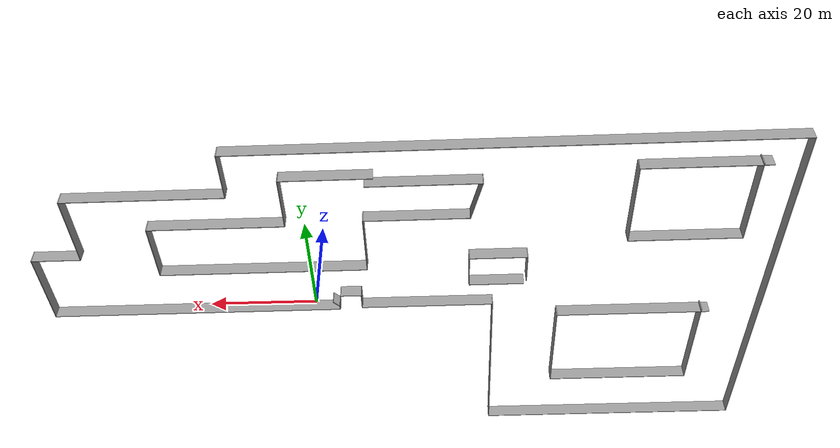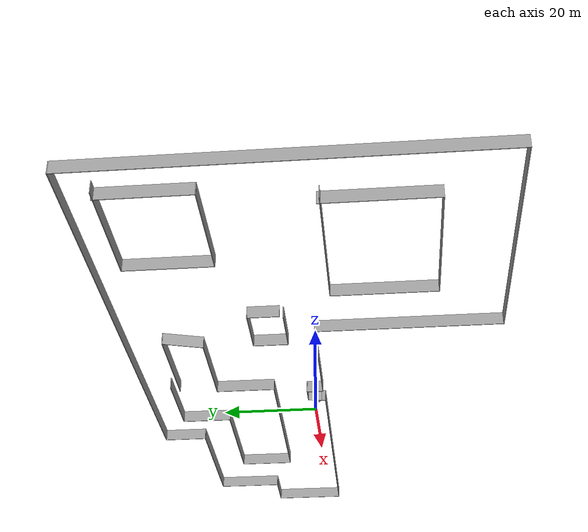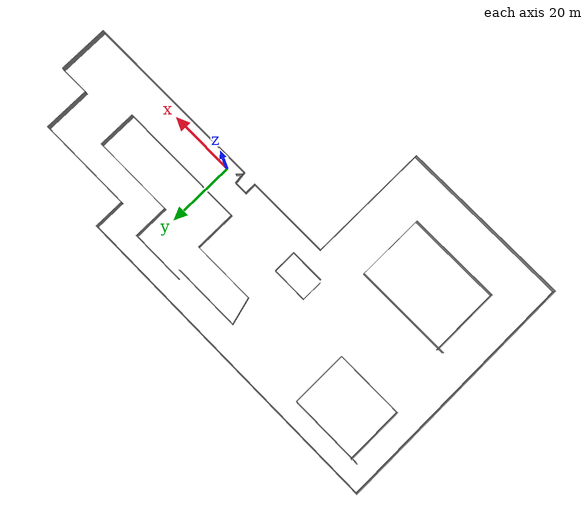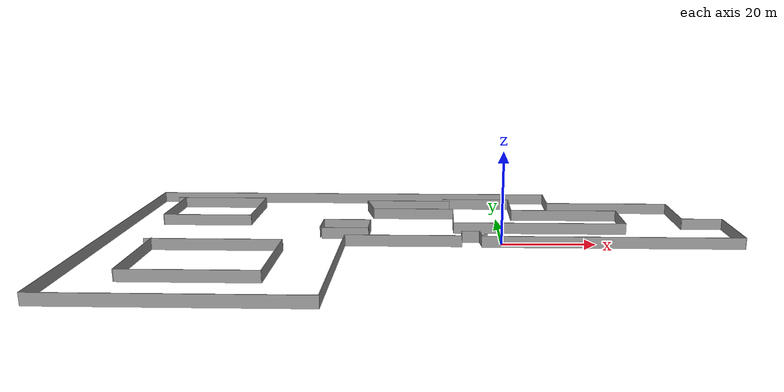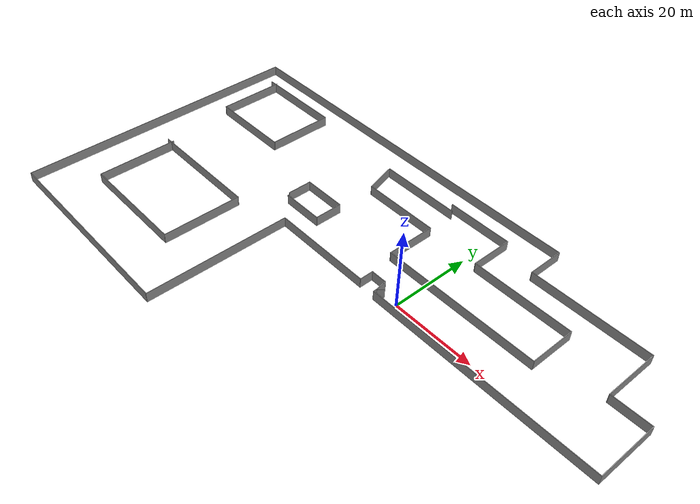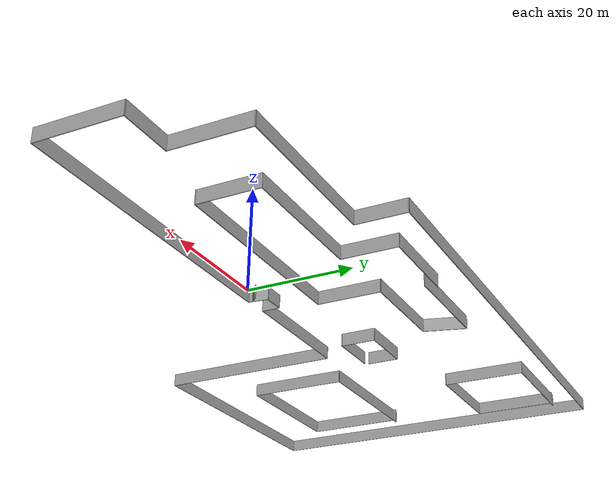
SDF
<?xml version='1.0'?>
<sdf version='1.7'>
  <model name='wall.world'>
    <pose>-16.84 -1.275 0 0 -0 0</pose>
    <link name='Wall_0'>
      <collision name='Wall_0_Collision'>
        <geometry>
          <box>
            <size>1 0.15 2.5</size>
          </box>
        </geometry>
        <pose>0 0 1.25 0 -0 0</pose>
      </collision>
      <visual name='Wall_0_Visual'>
        <pose>0 0 1.25 0 -0 0</pose>
        <geometry>
          <box>
            <size>1 0.15 2.5</size>
          </box>
        </geometry>
        <material>
          <script>
            <uri>file://media/materials/scripts/gazebo.material</uri>
            <name>Gazebo/Grey</name>
          </script>
          <ambient>1 1 1 1</ambient>
        </material>
        <meta>
          <layer>0</layer>
        </meta>
      </visual>
      <pose>12.55 -0.699998 0 0 -0 -1.5708</pose>
    </link>
    <link name='Wall_1'>
      <collision name='Wall_1_Collision'>
        <geometry>
          <box>
            <size>55.25 0.15 2.5</size>
          </box>
        </geometry>
        <pose>0 0 1.25 0 -0 0</pose>
      </collision>
      <visual name='Wall_1_Visual'>
        <pose>0 0 1.25 0 -0 0</pose>
        <geometry>
          <box>
            <size>55.25 0.15 2.5</size>
          </box>
        </geometry>
        <material>
          <script>
            <uri>file://media/materials/scripts/gazebo.material</uri>
            <name>Gazebo/Grey</name>
          </script>
          <ambient>1 1 1 1</ambient>
        </material>
        <meta>
          <layer>0</layer>
        </meta>
      </visual>
      <pose>40.1 -1.125 0 0 -0 0</pose>
    </link>
    <link name='Wall_10'>
      <collision name='Wall_10_Collision'>
        <geometry>
          <box>
            <size>36.25 0.15 2.5</size>
          </box>
        </geometry>
        <pose>0 0 1.25 0 -0 0</pose>
      </collision>
      <visual name='Wall_10_Visual'>
        <pose>0 0 1.25 0 -0 0</pose>
        <geometry>
          <box>
            <size>36.25 0.15 2.5</size>
          </box>
        </geometry>
        <material>
          <script>
            <uri>file://media/materials/scripts/gazebo.material</uri>
            <name>Gazebo/Grey</name>
          </script>
          <ambient>1 1 1 1</ambient>
        </material>
        <meta>
          <layer>0</layer>
        </meta>
      </visual>
      <pose>-16.55 -18.875 0 0 -0 1.5708</pose>
    </link>
    <link name='Wall_11'>
      <collision name='Wall_11_Collision'>
        <geometry>
          <box>
            <size>25 0.15 2.5</size>
          </box>
        </geometry>
        <pose>0 0 1.25 0 -0 0</pose>
      </collision>
      <visual name='Wall_11_Visual'>
        <pose>0 0 1.25 0 -0 0</pose>
        <geometry>
          <box>
            <size>25 0.15 2.5</size>
          </box>
        </geometry>
        <material>
          <script>
            <uri>file://media/materials/scripts/gazebo.material</uri>
            <name>Gazebo/Grey</name>
          </script>
          <ambient>1 1 1 1</ambient>
        </material>
        <meta>
          <layer>0</layer>
        </meta>
      </visual>
      <pose>-4.125 -0.824998 0 0 -0 0</pose>
    </link>
    <link name='Wall_12'>
      <collision name='Wall_12_Collision'>
        <geometry>
          <box>
            <size>3.5 0.15 2.5</size>
          </box>
        </geometry>
        <pose>0 0 1.25 0 -0 0</pose>
      </collision>
      <visual name='Wall_12_Visual'>
        <pose>0 0 1.25 0 -0 0</pose>
        <geometry>
          <box>
            <size>3.5 0.15 2.5</size>
          </box>
        </geometry>
        <material>
          <script>
            <uri>file://media/materials/scripts/gazebo.material</uri>
            <name>Gazebo/Grey</name>
          </script>
          <ambient>1 1 1 1</ambient>
        </material>
        <meta>
          <layer>0</layer>
        </meta>
      </visual>
      <pose>8.3 0.850002 0 0 -0 1.5708</pose>
    </link>
    <link name='Wall_13'>
      <collision name='Wall_13_Collision'>
        <geometry>
          <box>
            <size>4 0.15 2.5</size>
          </box>
        </geometry>
        <pose>0 0 1.25 0 -0 0</pose>
      </collision>
      <visual name='Wall_13_Visual'>
        <pose>0 0 1.25 0 -0 0</pose>
        <geometry>
          <box>
            <size>4 0.15 2.5</size>
          </box>
        </geometry>
        <material>
          <script>
            <uri>file://media/materials/scripts/gazebo.material</uri>
            <name>Gazebo/Grey</name>
          </script>
          <ambient>1 1 1 1</ambient>
        </material>
        <meta>
          <layer>0</layer>
        </meta>
      </visual>
      <pose>10.225 2.525 0 0 -0 0</pose>
    </link>
    <link name='Wall_14'>
      <collision name='Wall_14_Collision'>
        <geometry>
          <box>
            <size>2.97843 0.15 2.5</size>
          </box>
        </geometry>
        <pose>0 0 1.25 0 -0 0</pose>
      </collision>
      <visual name='Wall_14_Visual'>
        <pose>0 0 1.25 0 -0 0</pose>
        <geometry>
          <box>
            <size>2.97843 0.15 2.5</size>
          </box>
        </geometry>
        <material>
          <script>
            <uri>file://media/materials/scripts/gazebo.material</uri>
            <name>Gazebo/Grey</name>
          </script>
          <ambient>1 1 1 1</ambient>
        </material>
        <meta>
          <layer>0</layer>
        </meta>
      </visual>
      <pose>12.35 1.125 0 0 -0 -1.4289</pose>
    </link>
    <link name='Wall_15'>
      <collision name='Wall_15_Collision'>
        <geometry>
          <box>
            <size>1.75 0.15 2.5</size>
          </box>
        </geometry>
        <pose>0 0 1.25 0 -0 0</pose>
      </collision>
      <visual name='Wall_15_Visual'>
        <pose>0 0 1.25 0 -0 0</pose>
        <geometry>
          <box>
            <size>1.75 0.15 2.5</size>
          </box>
        </geometry>
        <material>
          <script>
            <uri>file://media/materials/scripts/gazebo.material</uri>
            <name>Gazebo/Grey</name>
          </script>
          <ambient>1 1 1 1</ambient>
        </material>
        <meta>
          <layer>0</layer>
        </meta>
      </visual>
      <pose>13.1157 0.290687 0 0 -0 0.785398</pose>
    </link>
    <link name='Wall_17'>
      <collision name='Wall_17_Collision'>
        <geometry>
          <box>
            <size>6.25 0.15 2.5</size>
          </box>
        </geometry>
        <pose>0 0 1.25 0 -0 0</pose>
      </collision>
      <visual name='Wall_17_Visual'>
        <pose>0 0 1.25 0 -0 0</pose>
        <geometry>
          <box>
            <size>6.25 0.15 2.5</size>
          </box>
        </geometry>
        <material>
          <script>
            <uri>file://media/materials/scripts/gazebo.material</uri>
            <name>Gazebo/Grey</name>
          </script>
          <ambient>1 1 1 1</ambient>
        </material>
        <meta>
          <layer>0</layer>
        </meta>
      </visual>
      <pose>-22.6685 8.48063 0 0 -0 1.5708</pose>
    </link>
    <link name='Wall_18'>
      <collision name='Wall_18_Collision'>
        <geometry>
          <box>
            <size>10.75 0.15 2.5</size>
          </box>
        </geometry>
        <pose>0 0 1.25 0 -0 0</pose>
      </collision>
      <visual name='Wall_18_Visual'>
        <pose>0 0 1.25 0 -0 0</pose>
        <geometry>
          <box>
            <size>10.75 0.15 2.5</size>
          </box>
        </geometry>
        <material>
          <script>
            <uri>file://media/materials/scripts/gazebo.material</uri>
            <name>Gazebo/Grey</name>
          </script>
          <ambient>1 1 1 1</ambient>
        </material>
        <meta>
          <layer>0</layer>
        </meta>
      </visual>
      <pose>-17.3685 11.5306 0 0 -0 0</pose>
    </link>
    <link name='Wall_19'>
      <collision name='Wall_19_Collision'>
        <geometry>
          <box>
            <size>7 0.15 2.5</size>
          </box>
        </geometry>
        <pose>0 0 1.25 0 -0 0</pose>
      </collision>
      <visual name='Wall_19_Visual'>
        <pose>0 0 1.25 0 -0 0</pose>
        <geometry>
          <box>
            <size>7 0.15 2.5</size>
          </box>
        </geometry>
        <material>
          <script>
            <uri>file://media/materials/scripts/gazebo.material</uri>
            <name>Gazebo/Grey</name>
          </script>
          <ambient>1 1 1 1</ambient>
        </material>
        <meta>
          <layer>0</layer>
        </meta>
      </visual>
      <pose>-12.0685 8.10563 0 0 -0 -1.5708</pose>
    </link>
    <link name='Wall_2'>
      <collision name='Wall_2_Collision'>
        <geometry>
          <box>
            <size>15.25 0.15 2.5</size>
          </box>
        </geometry>
        <pose>0 0 1.25 0 -0 0</pose>
      </collision>
      <visual name='Wall_2_Visual'>
        <pose>0 0 1.25 0 -0 0</pose>
        <geometry>
          <box>
            <size>15.25 0.15 2.5</size>
          </box>
        </geometry>
        <material>
          <script>
            <uri>file://media/materials/scripts/gazebo.material</uri>
            <name>Gazebo/Grey</name>
          </script>
          <ambient>1 1 1 1</ambient>
        </material>
        <meta>
          <layer>0</layer>
        </meta>
      </visual>
      <pose>67.65 6.425 0 0 -0 1.5708</pose>
    </link>
    <link name='Wall_20'>
      <collision name='Wall_20_Collision'>
        <geometry>
          <box>
            <size>10.25 0.15 2.5</size>
          </box>
        </geometry>
        <pose>0 0 1.25 0 -0 0</pose>
      </collision>
      <visual name='Wall_20_Visual'>
        <pose>0 0 1.25 0 -0 0</pose>
        <geometry>
          <box>
            <size>10.25 0.15 2.5</size>
          </box>
        </geometry>
        <material>
          <script>
            <uri>file://media/materials/scripts/gazebo.material</uri>
            <name>Gazebo/Grey</name>
          </script>
          <ambient>1 1 1 1</ambient>
        </material>
        <meta>
          <layer>0</layer>
        </meta>
      </visual>
      <pose>-17.1185 4.68063 0 0 -0 3.14159</pose>
    </link>
    <link name='Wall_22'>
      <collision name='Wall_22_Collision'>
        <geometry>
          <box>
            <size>20.5 0.15 2.5</size>
          </box>
        </geometry>
        <pose>0 0 1.25 0 -0 0</pose>
      </collision>
      <visual name='Wall_22_Visual'>
        <pose>0 0 1.25 0 -0 0</pose>
        <geometry>
          <box>
            <size>20.5 0.15 2.5</size>
          </box>
        </geometry>
        <material>
          <script>
            <uri>file://media/materials/scripts/gazebo.material</uri>
            <name>Gazebo/Grey</name>
          </script>
          <ambient>1 1 1 1</ambient>
        </material>
        <meta>
          <layer>0</layer>
        </meta>
      </visual>
      <pose>-56.6601 -14.2346 0 0 -0 -1.5708</pose>
    </link>
    <link name='Wall_23'>
      <collision name='Wall_23_Collision'>
        <geometry>
          <box>
            <size>27.75 0.15 2.5</size>
          </box>
        </geometry>
        <pose>0 0 1.25 0 -0 0</pose>
      </collision>
      <visual name='Wall_23_Visual'>
        <pose>0 0 1.25 0 -0 0</pose>
        <geometry>
          <box>
            <size>27.75 0.15 2.5</size>
          </box>
        </geometry>
        <material>
          <script>
            <uri>file://media/materials/scripts/gazebo.material</uri>
            <name>Gazebo/Grey</name>
          </script>
          <ambient>1 1 1 1</ambient>
        </material>
        <meta>
          <layer>0</layer>
        </meta>
      </visual>
      <pose>-42.8601 -24.4096 0 0 -0 0</pose>
    </link>
    <link name='Wall_24'>
      <collision name='Wall_24_Collision'>
        <geometry>
          <box>
            <size>20 0.15 2.5</size>
          </box>
        </geometry>
        <pose>0 0 1.25 0 -0 0</pose>
      </collision>
      <visual name='Wall_24_Visual'>
        <pose>0 0 1.25 0 -0 0</pose>
        <geometry>
          <box>
            <size>20 0.15 2.5</size>
          </box>
        </geometry>
        <material>
          <script>
            <uri>file://media/materials/scripts/gazebo.material</uri>
            <name>Gazebo/Grey</name>
          </script>
          <ambient>1 1 1 1</ambient>
        </material>
        <meta>
          <layer>0</layer>
        </meta>
      </visual>
      <pose>-29.0601 -14.4846 0 0 -0 1.5708</pose>
    </link>
    <link name='Wall_25'>
      <collision name='Wall_25_Collision'>
        <geometry>
          <box>
            <size>29.25 0.15 2.5</size>
          </box>
        </geometry>
        <pose>0 0 1.25 0 -0 0</pose>
      </collision>
      <visual name='Wall_25_Visual'>
        <pose>0 0 1.25 0 -0 0</pose>
        <geometry>
          <box>
            <size>29.25 0.15 2.5</size>
          </box>
        </geometry>
        <material>
          <script>
            <uri>file://media/materials/scripts/gazebo.material</uri>
            <name>Gazebo/Grey</name>
          </script>
          <ambient>1 1 1 1</ambient>
        </material>
        <meta>
          <layer>0</layer>
        </meta>
      </visual>
      <pose>-43.6101 -4.55961 0 0 -0 3.14159</pose>
    </link>
    <link name='Wall_27'>
      <collision name='Wall_27_Collision'>
        <geometry>
          <box>
            <size>22.25 0.15 2.5</size>
          </box>
        </geometry>
        <pose>0 0 1.25 0 -0 0</pose>
      </collision>
      <visual name='Wall_27_Visual'>
        <pose>0 0 1.25 0 -0 0</pose>
        <geometry>
          <box>
            <size>22.25 0.15 2.5</size>
          </box>
        </geometry>
        <material>
          <script>
            <uri>file://media/materials/scripts/gazebo.material</uri>
            <name>Gazebo/Grey</name>
          </script>
          <ambient>1 1 1 1</ambient>
        </material>
        <meta>
          <layer>0</layer>
        </meta>
      </visual>
      <pose>-51.2886 31.5258 0 0 -0 0</pose>
    </link>
    <link name='Wall_28'>
      <collision name='Wall_28_Collision'>
        <geometry>
          <box>
            <size>16.75 0.15 2.5</size>
          </box>
        </geometry>
        <pose>0 0 1.25 0 -0 0</pose>
      </collision>
      <visual name='Wall_28_Visual'>
        <pose>0 0 1.25 0 -0 0</pose>
        <geometry>
          <box>
            <size>16.75 0.15 2.5</size>
          </box>
        </geometry>
        <material>
          <script>
            <uri>file://media/materials/scripts/gazebo.material</uri>
            <name>Gazebo/Grey</name>
          </script>
          <ambient>1 1 1 1</ambient>
        </material>
        <meta>
          <layer>0</layer>
        </meta>
      </visual>
      <pose>-40.2386 23.2258 0 0 -0 -1.5708</pose>
    </link>
    <link name='Wall_29'>
      <collision name='Wall_29_Collision'>
        <geometry>
          <box>
            <size>20.5 0.15 2.5</size>
          </box>
        </geometry>
        <pose>0 0 1.25 0 -0 0</pose>
      </collision>
      <visual name='Wall_29_Visual'>
        <pose>0 0 1.25 0 -0 0</pose>
        <geometry>
          <box>
            <size>20.5 0.15 2.5</size>
          </box>
        </geometry>
        <material>
          <script>
            <uri>file://media/materials/scripts/gazebo.material</uri>
            <name>Gazebo/Grey</name>
          </script>
          <ambient>1 1 1 1</ambient>
        </material>
        <meta>
          <layer>0</layer>
        </meta>
      </visual>
      <pose>-50.4136 14.9258 0 0 -0 3.14159</pose>
    </link>
    <link name='Wall_3'>
      <collision name='Wall_3_Collision'>
        <geometry>
          <box>
            <size>9.25 0.15 2.5</size>
          </box>
        </geometry>
        <pose>0 0 1.25 0 -0 0</pose>
      </collision>
      <visual name='Wall_3_Visual'>
        <pose>0 0 1.25 0 -0 0</pose>
        <geometry>
          <box>
            <size>9.25 0.15 2.5</size>
          </box>
        </geometry>
        <material>
          <script>
            <uri>file://media/materials/scripts/gazebo.material</uri>
            <name>Gazebo/Grey</name>
          </script>
          <ambient>1 1 1 1</ambient>
        </material>
        <meta>
          <layer>0</layer>
        </meta>
      </visual>
      <pose>63.1 13.975 0 0 -0 3.14159</pose>
    </link>
    <link name='Wall_30'>
      <collision name='Wall_30_Collision'>
        <geometry>
          <box>
            <size>17 0.15 2.5</size>
          </box>
        </geometry>
        <pose>0 0 1.25 0 -0 0</pose>
      </collision>
      <visual name='Wall_30_Visual'>
        <pose>0 0 1.25 0 -0 0</pose>
        <geometry>
          <box>
            <size>17 0.15 2.5</size>
          </box>
        </geometry>
        <material>
          <script>
            <uri>file://media/materials/scripts/gazebo.material</uri>
            <name>Gazebo/Grey</name>
          </script>
          <ambient>1 1 1 1</ambient>
        </material>
        <meta>
          <layer>0</layer>
        </meta>
      </visual>
      <pose>-60.5886 23.3508 0 0 -0 1.5708</pose>
    </link>
    <link name='Wall_32'>
      <collision name='Wall_32_Collision'>
        <geometry>
          <box>
            <size>16.25 0.15 2.5</size>
          </box>
        </geometry>
        <pose>0 0 1.25 0 -0 0</pose>
      </collision>
      <visual name='Wall_32_Visual'>
        <pose>0 0 1.25 0 -0 0</pose>
        <geometry>
          <box>
            <size>16.25 0.15 2.5</size>
          </box>
        </geometry>
        <material>
          <script>
            <uri>file://media/materials/scripts/gazebo.material</uri>
            <name>Gazebo/Grey</name>
          </script>
          <ambient>1 1 1 1</ambient>
        </material>
        <meta>
          <layer>0</layer>
        </meta>
      </visual>
      <pose>12.3394 31.1472 0 0 -0 0</pose>
    </link>
    <link name='Wall_33'>
      <collision name='Wall_33_Collision'>
        <geometry>
          <box>
            <size>10.5 0.15 2.5</size>
          </box>
        </geometry>
        <pose>0 0 1.25 0 -0 0</pose>
      </collision>
      <visual name='Wall_33_Visual'>
        <pose>0 0 1.25 0 -0 0</pose>
        <geometry>
          <box>
            <size>10.5 0.15 2.5</size>
          </box>
        </geometry>
        <material>
          <script>
            <uri>file://media/materials/scripts/gazebo.material</uri>
            <name>Gazebo/Grey</name>
          </script>
          <ambient>1 1 1 1</ambient>
        </material>
        <meta>
          <layer>0</layer>
        </meta>
      </visual>
      <pose>20.3894 25.9722 0 0 -0 -1.5708</pose>
    </link>
    <link name='Wall_34'>
      <collision name='Wall_34_Collision'>
        <geometry>
          <box>
            <size>24.75 0.15 2.5</size>
          </box>
        </geometry>
        <pose>0 0 1.25 0 -0 0</pose>
      </collision>
      <visual name='Wall_34_Visual'>
        <pose>0 0 1.25 0 -0 0</pose>
        <geometry>
          <box>
            <size>24.75 0.15 2.5</size>
          </box>
        </geometry>
        <material>
          <script>
            <uri>file://media/materials/scripts/gazebo.material</uri>
            <name>Gazebo/Grey</name>
          </script>
          <ambient>1 1 1 1</ambient>
        </material>
        <meta>
          <layer>0</layer>
        </meta>
      </visual>
      <pose>32.6894 20.7972 0 0 -0 0</pose>
    </link>
    <link name='Wall_35'>
      <collision name='Wall_35_Collision'>
        <geometry>
          <box>
            <size>11.5 0.15 2.5</size>
          </box>
        </geometry>
        <pose>0 0 1.25 0 -0 0</pose>
      </collision>
      <visual name='Wall_35_Visual'>
        <pose>0 0 1.25 0 -0 0</pose>
        <geometry>
          <box>
            <size>11.5 0.15 2.5</size>
          </box>
        </geometry>
        <material>
          <script>
            <uri>file://media/materials/scripts/gazebo.material</uri>
            <name>Gazebo/Grey</name>
          </script>
          <ambient>1 1 1 1</ambient>
        </material>
        <meta>
          <layer>0</layer>
        </meta>
      </visual>
      <pose>44.9894 15.1222 0 0 -0 -1.5708</pose>
    </link>
    <link name='Wall_36'>
      <collision name='Wall_36_Collision'>
        <geometry>
          <box>
            <size>38.5 0.15 2.5</size>
          </box>
        </geometry>
        <pose>0 0 1.25 0 -0 0</pose>
      </collision>
      <visual name='Wall_36_Visual'>
        <pose>0 0 1.25 0 -0 0</pose>
        <geometry>
          <box>
            <size>38.5 0.15 2.5</size>
          </box>
        </geometry>
        <material>
          <script>
            <uri>file://media/materials/scripts/gazebo.material</uri>
            <name>Gazebo/Grey</name>
          </script>
          <ambient>1 1 1 1</ambient>
        </material>
        <meta>
          <layer>0</layer>
        </meta>
      </visual>
      <pose>25.8144 9.44721 0 0 -0 3.14159</pose>
    </link>
    <link name='Wall_37'>
      <collision name='Wall_37_Collision'>
        <geometry>
          <box>
            <size>12.25 0.15 2.5</size>
          </box>
        </geometry>
        <pose>0 0 1.25 0 -0 0</pose>
      </collision>
      <visual name='Wall_37_Visual'>
        <pose>0 0 1.25 0 -0 0</pose>
        <geometry>
          <box>
            <size>12.25 0.15 2.5</size>
          </box>
        </geometry>
        <material>
          <script>
            <uri>file://media/materials/scripts/gazebo.material</uri>
            <name>Gazebo/Grey</name>
          </script>
          <ambient>1 1 1 1</ambient>
        </material>
        <meta>
          <layer>0</layer>
        </meta>
      </visual>
      <pose>6.63936 15.4972 0 0 -0 1.5708</pose>
    </link>
    <link name='Wall_38'>
      <collision name='Wall_38_Collision'>
        <geometry>
          <box>
            <size>19 0.15 2.5</size>
          </box>
        </geometry>
        <pose>0 0 1.25 0 -0 0</pose>
      </collision>
      <visual name='Wall_38_Visual'>
        <pose>0 0 1.25 0 -0 0</pose>
        <geometry>
          <box>
            <size>19 0.15 2.5</size>
          </box>
        </geometry>
        <material>
          <script>
            <uri>file://media/materials/scripts/gazebo.material</uri>
            <name>Gazebo/Grey</name>
          </script>
          <ambient>1 1 1 1</ambient>
        </material>
        <meta>
          <layer>0</layer>
        </meta>
      </visual>
      <pose>-2.78564 21.5472 0 0 -0 3.14159</pose>
    </link>
    <link name='Wall_39'>
      <collision name='Wall_39_Collision'>
        <geometry>
          <box>
            <size>8.25 0.15 2.5</size>
          </box>
        </geometry>
        <pose>0 0 1.25 0 -0 0</pose>
      </collision>
      <visual name='Wall_39_Visual'>
        <pose>0 0 1.25 0 -0 0</pose>
        <geometry>
          <box>
            <size>8.25 0.15 2.5</size>
          </box>
        </geometry>
        <material>
          <script>
            <uri>file://media/materials/scripts/gazebo.material</uri>
            <name>Gazebo/Grey</name>
          </script>
          <ambient>1 1 1 1</ambient>
        </material>
        <meta>
          <layer>0</layer>
        </meta>
      </visual>
      <pose>-13.2589 25.4592 0 0 -0 1.8326</pose>
    </link>
    <link name='Wall_4'>
      <collision name='Wall_4_Collision'>
        <geometry>
          <box>
            <size>14 0.15 2.5</size>
          </box>
        </geometry>
        <pose>0 0 1.25 0 -0 0</pose>
      </collision>
      <visual name='Wall_4_Visual'>
        <pose>0 0 1.25 0 -0 0</pose>
        <geometry>
          <box>
            <size>14 0.15 2.5</size>
          </box>
        </geometry>
        <material>
          <script>
            <uri>file://media/materials/scripts/gazebo.material</uri>
            <name>Gazebo/Grey</name>
          </script>
          <ambient>1 1 1 1</ambient>
        </material>
        <meta>
          <layer>0</layer>
        </meta>
      </visual>
      <pose>58.55 20.9 0 0 -0 1.5708</pose>
    </link>
    <link name='Wall_40'>
      <collision name='Wall_40_Collision'>
        <geometry>
          <box>
            <size>20.25 0.15 2.5</size>
          </box>
        </geometry>
        <pose>0 0 1.25 0 -0 0</pose>
      </collision>
      <visual name='Wall_40_Visual'>
        <pose>0 0 1.25 0 -0 0</pose>
        <geometry>
          <box>
            <size>20.25 0.15 2.5</size>
          </box>
        </geometry>
        <material>
          <script>
            <uri>file://media/materials/scripts/gazebo.material</uri>
            <name>Gazebo/Grey</name>
          </script>
          <ambient>1 1 1 1</ambient>
        </material>
        <meta>
          <layer>0</layer>
        </meta>
      </visual>
      <pose>-4.25707 29.3712 0 0 -0 0</pose>
    </link>
    <link name='Wall_5'>
      <collision name='Wall_5_Collision'>
        <geometry>
          <box>
            <size>29 0.15 2.5</size>
          </box>
        </geometry>
        <pose>0 0 1.25 0 -0 0</pose>
      </collision>
      <visual name='Wall_5_Visual'>
        <pose>0 0 1.25 0 -0 0</pose>
        <geometry>
          <box>
            <size>29 0.15 2.5</size>
          </box>
        </geometry>
        <material>
          <script>
            <uri>file://media/materials/scripts/gazebo.material</uri>
            <name>Gazebo/Grey</name>
          </script>
          <ambient>1 1 1 1</ambient>
        </material>
        <meta>
          <layer>0</layer>
        </meta>
      </visual>
      <pose>44.125 27.825 0 0 -0 3.14159</pose>
    </link>
    <link name='Wall_6'>
      <collision name='Wall_6_Collision'>
        <geometry>
          <box>
            <size>9.25 0.15 2.5</size>
          </box>
        </geometry>
        <pose>0 0 1.25 0 -0 0</pose>
      </collision>
      <visual name='Wall_6_Visual'>
        <pose>0 0 1.25 0 -0 0</pose>
        <geometry>
          <box>
            <size>9.25 0.15 2.5</size>
          </box>
        </geometry>
        <material>
          <script>
            <uri>file://media/materials/scripts/gazebo.material</uri>
            <name>Gazebo/Grey</name>
          </script>
          <ambient>1 1 1 1</ambient>
        </material>
        <meta>
          <layer>0</layer>
        </meta>
      </visual>
      <pose>29.7 32.375 0 0 -0 1.5708</pose>
    </link>
    <link name='Wall_7'>
      <collision name='Wall_7_Collision'>
        <geometry>
          <box>
            <size>97.5 0.15 2.5</size>
          </box>
        </geometry>
        <pose>0 0 1.25 0 -0 0</pose>
      </collision>
      <visual name='Wall_7_Visual'>
        <pose>0 0 1.25 0 -0 0</pose>
        <geometry>
          <box>
            <size>97.5 0.15 2.5</size>
          </box>
        </geometry>
        <material>
          <script>
            <uri>file://media/materials/scripts/gazebo.material</uri>
            <name>Gazebo/Grey</name>
          </script>
          <ambient>1 1 1 1</ambient>
        </material>
        <meta>
          <layer>0</layer>
        </meta>
      </visual>
      <pose>-18.975 36.925 0 0 -0 3.14159</pose>
    </link>
    <link name='Wall_8'>
      <collision name='Wall_8_Collision'>
        <geometry>
          <box>
            <size>74 0.15 2.5</size>
          </box>
        </geometry>
        <pose>0 0 1.25 0 -0 0</pose>
      </collision>
      <visual name='Wall_8_Visual'>
        <pose>0 0 1.25 0 -0 0</pose>
        <geometry>
          <box>
            <size>74 0.15 2.5</size>
          </box>
        </geometry>
        <material>
          <script>
            <uri>file://media/materials/scripts/gazebo.material</uri>
            <name>Gazebo/Grey</name>
          </script>
          <ambient>1 1 1 1</ambient>
        </material>
        <meta>
          <layer>0</layer>
        </meta>
      </visual>
      <pose>-67.65 2e-06 0 0 -0 -1.5708</pose>
    </link>
    <link name='Wall_9'>
      <collision name='Wall_9_Collision'>
        <geometry>
          <box>
            <size>51.25 0.15 2.5</size>
          </box>
        </geometry>
        <pose>0 0 1.25 0 -0 0</pose>
      </collision>
      <visual name='Wall_9_Visual'>
        <pose>0 0 1.25 0 -0 0</pose>
        <geometry>
          <box>
            <size>51.25 0.15 2.5</size>
          </box>
        </geometry>
        <material>
          <script>
            <uri>file://media/materials/scripts/gazebo.material</uri>
            <name>Gazebo/Grey</name>
          </script>
          <ambient>1 1 1 1</ambient>
        </material>
        <meta>
          <layer>0</layer>
        </meta>
      </visual>
      <pose>-42.1 -36.925 0 0 -0 0</pose>
    </link>
    <static>1</static>
  </model>
</sdf>
